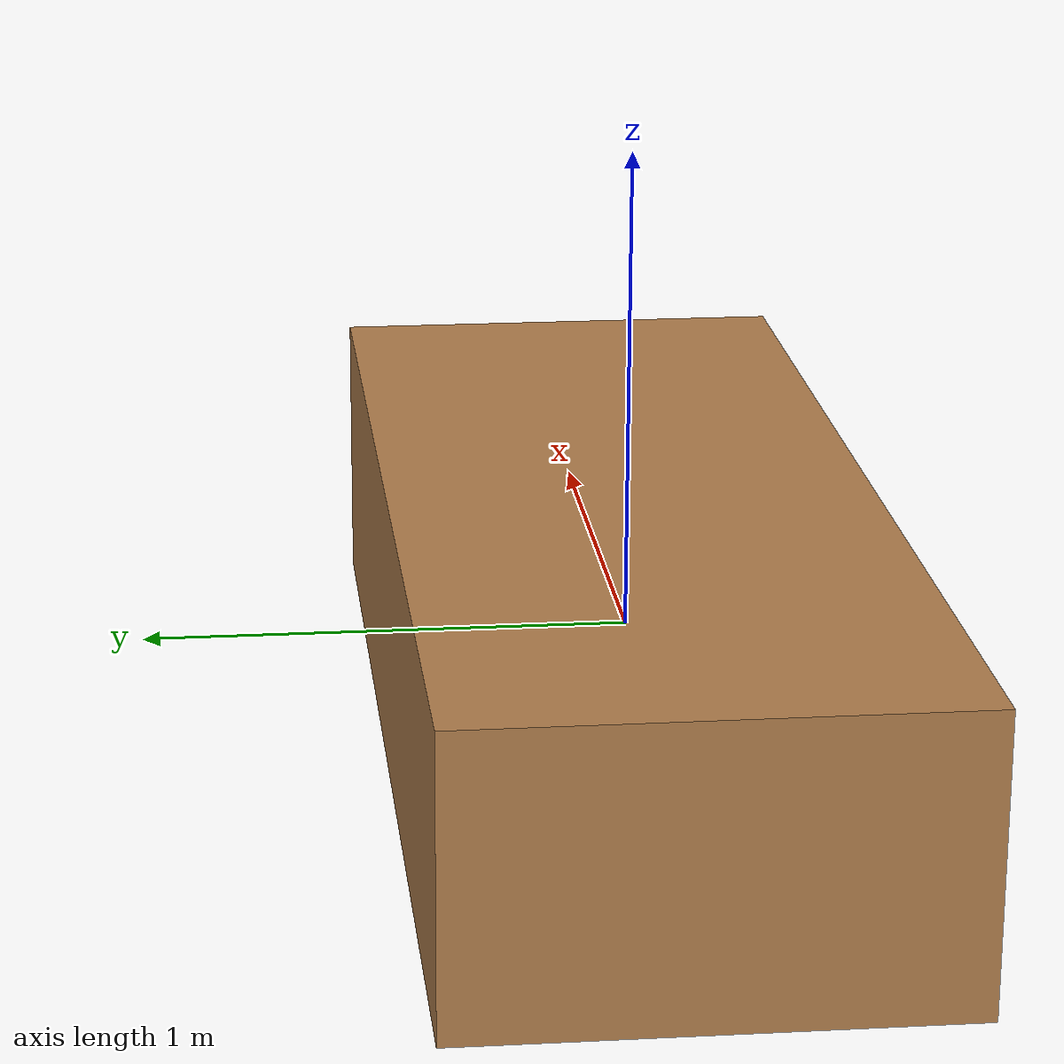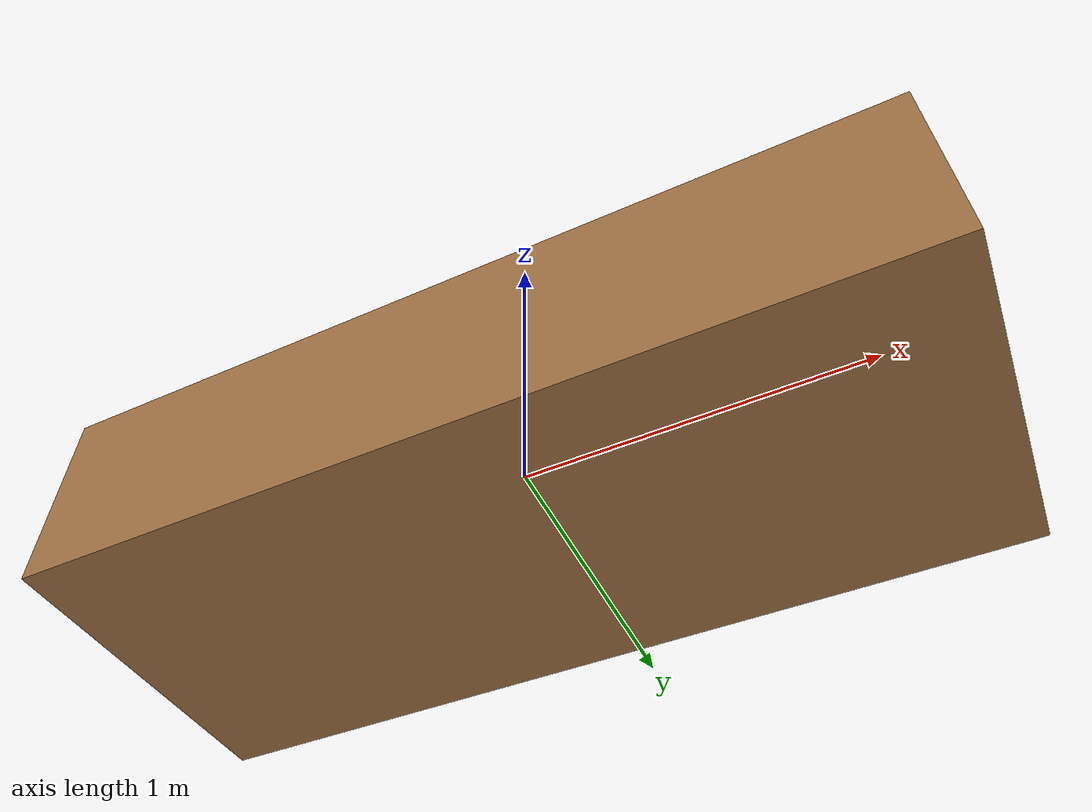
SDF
<?xml version="1.0" ?>
<sdf version="1.6">
  <model name="table">
    <static>true</static> <!-- Set to true to fix position, subject to gravity -->

    <link name="link">
      <collision name="collision">
        <geometry>
          <box>
            <size>2.5 1 0.6</size> <!-- Dimensions of the cube (x, y, z) -->
          </box>
        </geometry>
                <!-- Optionally, set a friction model if needed -->
        <surface>
          <friction>
            <ode>
              <mu>100000</mu> <!-- High friction to prevent sliding -->
              <mu2>100000</mu2>
            </ode>
          </friction>
        </surface>
      </collision>
      <visual name="visual">
        <geometry>
          <box>
            <size>2.5 1 0.6</size> <!-- Dimensions of the cube (x, y, z) -->
          </box>
        </geometry>
        <material>
          <script>
            <uri>file://media/materials/scripts/gazebo.material</uri>
            <name>Gazebo/Wood</name> <!-- Use the correct material name for black -->
          </script>
        </material>
      </visual>
    </link>

    <!-- Set mass and inertia for the cube -->
    <inertial>
      <mass>100</mass>
      <inertia>
        <ixx>0.1</ixx>
        <iyy>0.1</iyy>
        <izz>0.1</izz>
        <ixy>0</ixy>
        <ixz>0</ixz>
        <iyz>0</iyz>
      </inertia>
    </inertial>
  </model>
</sdf>
